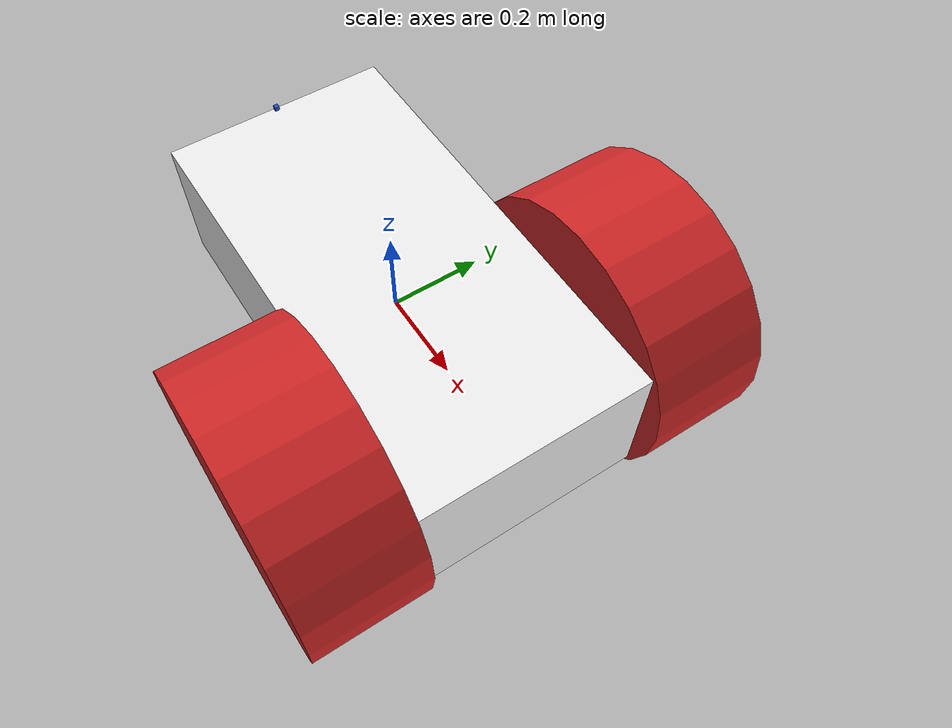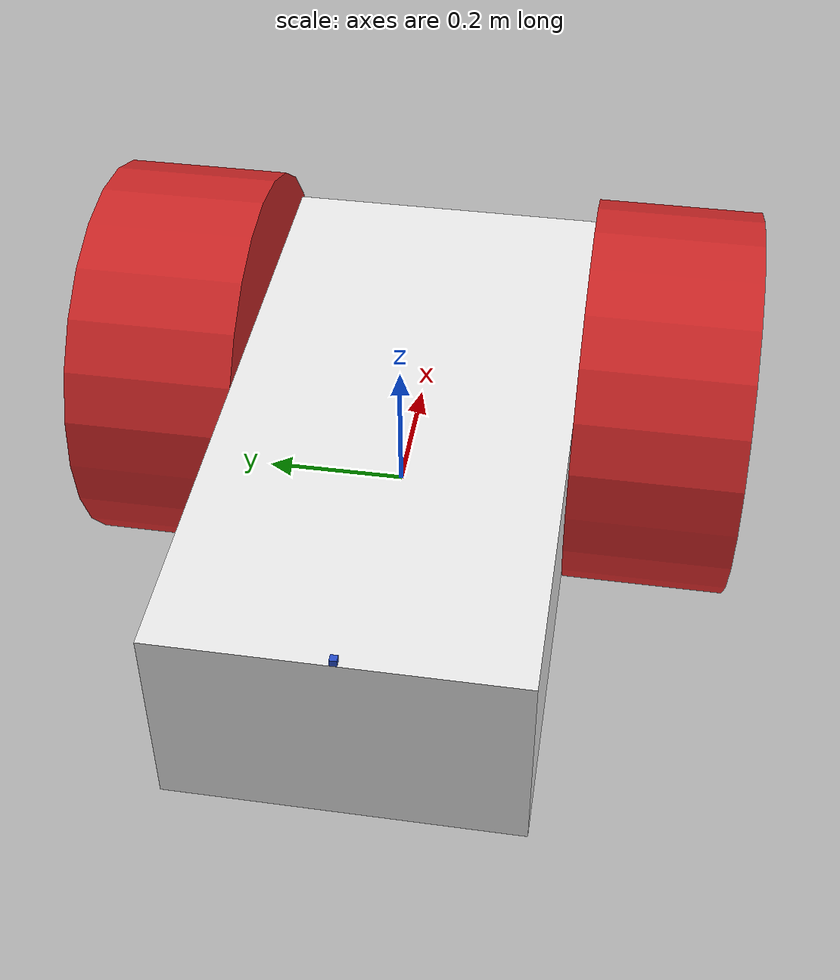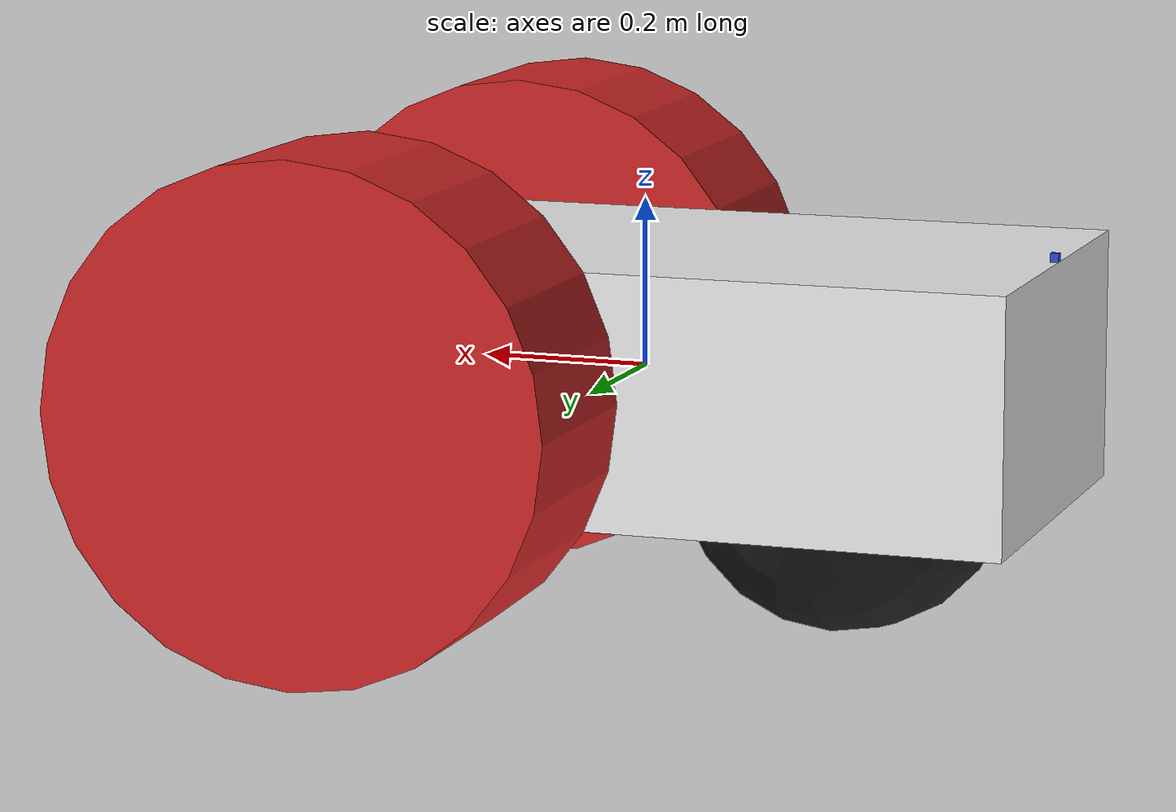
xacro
<?xml version="1.0"?>
<robot xmlns:xacro="http://www.ros.org/wiki/xacro" name="simple_rover">
  <xacro:property name="wheel_separation" value="0.375" />
  <xacro:property name="wheel_radius" value="0.3" />
  <xacro:property name="caster_wheel_radius" value="0.2" />
  <xacro:property name="wheel_width" value="0.25" />
  <xacro:property name="body_height" value="1.0" />
  <xacro:property name="body_width" value="0.5" />
  <xacro:property name="body_length" value="0.3" />
  <xacro:include filename="camera.urdf.xacro"/>

  <gazebo reference="chassis">
    <material>Gazebo/White</material>
    <mu1>0.2</mu1>
    <mu2>0.2</mu2>
  </gazebo>

  <gazebo reference="right_wheel">
    <material>Gazebo/Red</material>
    <mu1>0.84</mu1>
    <mu2>0.84</mu2>
  </gazebo>

  <gazebo reference="left_wheel">
    <material>Gazebo/Red</material>
    <mu1>0.84</mu1>
    <mu2>0.84</mu2>
  </gazebo>

  <gazebo reference="caster_wheel">
    <material>Gazebo/Black</material>
    <mu1>0.84</mu1>
    <mu2>0.84</mu2>
  </gazebo>

  <gazebo reference="camera_link">
    <material>Gazebo/Blue</material>
    <mu1>0.84</mu1>
    <mu2>0.84</mu2>
  </gazebo>

  <link name="chassis">
    <visual>
      <geometry>
        <box size="${body_height} ${body_width} ${body_length}"/>
      </geometry>
    </visual>
    <collision>
      <geometry>
        <box size="${body_height} ${body_width} ${body_length}"/>
      </geometry>
    </collision>

    <inertial>
      <mass value="1"/>
      <inertia ixx="0.166667" ixy="0" ixz="0" iyy="0.166667" iyz="0" izz="0.166667"/>
    </inertial>
  </link>

  <link name="left_wheel">
    <visual>
      <geometry>
        <!-- IMPLEMENT HERE -->
        <cylinder radius="${wheel_radius}" length="${wheel_width}"/>
      </geometry>
    </visual>

    <collision>
      <geometry>
        <!-- IMPLEMENT HERE -->
        <cylinder radius="${wheel_radius}" length="${wheel_width}"/>
      </geometry>
    </collision>

    <inertial>
      <mass value="1"/>
      <inertia ixx="0.145833" ixy="0.0" ixz="0.0" iyy="0.145833" iyz="0.0" izz="0.125"/>
    </inertial>
  </link>

  <link name="right_wheel">
    <visual>
      <geometry>
        <!-- IMPLEMENT HERE -->
        <cylinder radius="${wheel_radius}" length="${wheel_width}"/>
      </geometry>
    </visual>

    <collision>
      <geometry>
        <!-- IMPLEMENT HERE -->
        <cylinder radius="${wheel_radius}" length="${wheel_width}"/>
      </geometry>
    </collision>

    <inertial>
      <mass value="1"/>
      <inertia ixx="0.145833" ixy="0.0" ixz="0.0" iyy="0.145833" iyz="0.0" izz="0.125"/>
    </inertial>
  </link>

  <link name="caster_wheel">
    <visual>
      <geometry>
        <!-- IMPLEMENT HERE -->
        <sphere radius="${caster_wheel_radius}"/>
      </geometry>
    </visual>

    <collision>
      <geometry>
        <!-- IMPLEMENT HERE -->
        <sphere radius="${caster_wheel_radius}"/>
      </geometry>
    </collision>

    <inertial>
      <mass value="1"/>
      <inertia ixx="0.1" ixy="0.0" ixz="0.0" iyy="0.1" iyz="0.0" izz="0.1"/>
    </inertial>
  </link>

  <link name="camera_link">
    <visual>
      <geometry>
        <box size="0.01 0.01 0.01"/>
      </geometry>
    </visual>
  </link>

  <joint name="joint_left" type="continuous">
    <!-- IMPLEMENT HERE -->
    <parent link="chassis"/>
    <child link="left_wheel"/>
    <origin rpy="${pi / 2} 0 0" xyz="0.25 -${wheel_separation} 0"/>
    <axis xyz="0 0 1"/>
    <dynamics friction="0.1"/>
  </joint>

  <joint name="joint_right" type="continuous">
    <!-- IMPLEMENT HERE -->
    <parent link="chassis"/>
    <child link="right_wheel"/>
    <origin rpy="${pi / 2} 0 0" xyz="0.25 ${wheel_separation} 0"/>
    <axis xyz="0 0 1"/>
    <dynamics friction="0.1"/>
  </joint>

  <joint name="joint_caster_wheel" type="continuous">
    <!-- IMPLEMENT HERE -->
    <parent link="chassis"/>
    <child link="caster_wheel"/>
    <origin rpy="${pi / 2} 0 0" xyz="-0.25 0 -0.1"/>
    <axis xyz="0 0 1"/>
    <dynamics friction="0.1"/>
  </joint>

  <joint name="camera_joint" type="fixed">
    <parent link="chassis"/>
    <child link="camera_link"/>
    <origin xyz="-0.495 0 0.155" rpy="${pi} ${pi} 0"/>
  </joint>

  <xacro:macro name="diff_drive_plugin" params="left_joint right_joint wheel_separation">
    <gazebo>
      <plugin name="simple_rover_diff_drive" filename="libgazebo_ros_diff_drive.so">
        <update_rate>30</update_rate>

        <!-- wheels -->
        <left_joint>joint_left</left_joint>
        <right_joint>joint_right</right_joint>

        <!-- kinematics -->
        <wheel_separation>${wheel_separation}</wheel_separation>
        <wheel_diameter>0.28</wheel_diameter>

        <!-- limits -->
        <max_wheel_torque>20</max_wheel_torque>
        <max_wheel_acceleration>1.0</max_wheel_acceleration>

        <!-- Receive velocity commands on this ROS topic -->
        <command_topic>cmd_vel</command_topic>
      </plugin>
    </gazebo>
  </xacro:macro>

  <xacro:diff_drive_plugin left_joint="joint_left" right_joint="joint_right" wheel_separation="${wheel_separation}"/>
  <xacro:normal_camera robot_name="simple_rover"/>
</robot>
